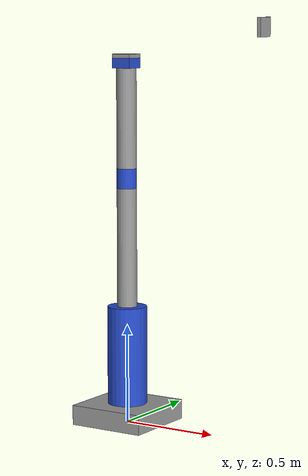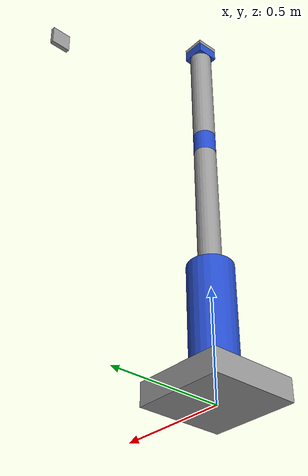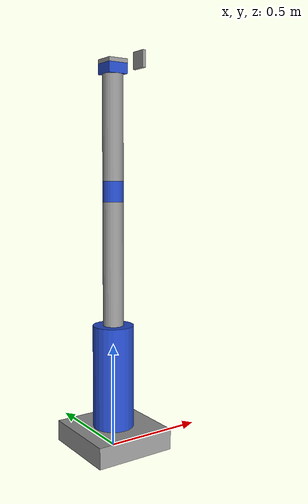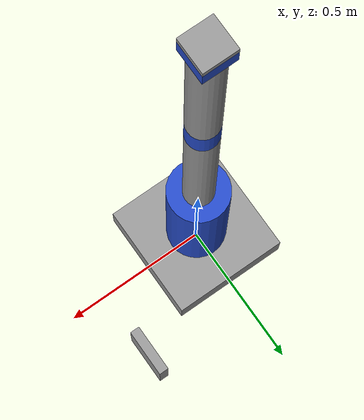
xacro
<?xml version="1.0"?>
<robot xmlns:xacro="http://www.ros.org/wiki/xacro">

    <link name="world"/>

    <joint name="world_joint" type="fixed">
        <parent link="world"/>
        <child link="base_link"/>
        <origin xyz="0 0 0" rpy="0 0 0"/>
    </joint>

    <link name="base_link">
        <visual>
            <geometry>
                <box size="0.4 0.4 0.1" />
            </geometry>
            <origin xyz="0 0 0.05" rpy="0 0 0" />
            <material name="grey" />
        </visual>

       <xacro:box_inertia m="5.0" x="0.4" y="0.4" z="0.1"
                           o_xyz="0 0 0.05" o_rpy="0 0 0" />

        <collision>
            <geometry>
                <box size="0.4 0.4 0.1" />
            </geometry>
            <origin xyz="0 0 0.05" rpy="0 0 0" />
        </collision>
    </link>

    <link name="shoulder_link">
        <visual>
            <geometry>
                <cylinder length="0.5" radius="0.1" />
            </geometry>
            <origin xyz="0 0 0.25" rpy="0 0 0" />
            <material name="blue" />
        </visual>

        <collision>
            <geometry>
                <box size="0.2 0.2 0.5"/>
            </geometry>
            <origin xyz="0 0 0.25" rpy="0 0 0" />
        </collision>

       <xacro:box_inertia m="5.0" x="0.2" y="0.2" z="0.5"
                           o_xyz="0 0 0.25" o_rpy="0 0 0" />
    </link>

    <link name="arm_link">
        <visual>
            <geometry>
                <cylinder length="0.6" radius="0.05" />
            </geometry>
            <origin xyz="0 0 0.3" rpy="0 0 0" />
            <material name="grey" />
        </visual>
        <collision>
            <geometry>
                <box size="0.1 0.1 0.6" />
            </geometry>
            <origin xyz="0 0 0.3" rpy="0 0 0" />
        </collision>

        <xacro:box_inertia m="5.0" x="0.1" y="0.1" z="0.6"
                           o_xyz="0 0 0.3" o_rpy="0 0 0" />

    </link>

    <link name="elbow_link">
        <visual>
            <geometry>
                <cylinder length="0.1" radius="0.05" />
            </geometry>
            <origin xyz="0 0 0.05" rpy="0 0 0" />
            <material name="blue" />
        </visual>
        <collision>
            <geometry>
                <box size="0.1 0.1 0.1" />
            </geometry>
            <origin xyz="0 0 0.05" rpy="0 0 0" />
        </collision>

          <xacro:box_inertia m="5.0" x="0.1" y="0.1" z="0.1"
                           o_xyz="0 0 0.05" o_rpy="0 0 0" />

    </link>

    <link name="forearm_link">
        <visual>
            <geometry>
                <cylinder length="0.5" radius="0.05" />
            </geometry>
            <origin xyz="0 0 0.25" rpy="0 0 0" />
            <material name="grey" />
        </visual>
        <collision>
            <geometry>
                <box size="0.1 0.1 0.5" />
            </geometry>
            <origin xyz="0 0 0.25" rpy="0 0 0" />
        </collision>

        <xacro:box_inertia m="5.0" x="0.1" y="0.1" z="0.5"
                           o_xyz="0 0 0.25" o_rpy="0 0 0" />

    </link>

    <link name="wrist_link">
        <visual>
            <geometry>
                <box size="0.1 0.1 0.05" />
            </geometry>
            <origin xyz="0 0 0.025" rpy="0 0 0" />
            <material name="blue" />
        </visual>
        <collision>
            <geometry>
                <box size="0.1 0.1 0.05" />
            </geometry>
            <origin xyz="0 0 0.025" rpy="0 0 0" />
        </collision>

          <xacro:box_inertia m="5.0" x="0.1" y="0.1" z="0.05"
                           o_xyz="0 0 0.05" o_rpy="0 0 0" />
    </link>

    <link name="hand_link">
        <visual>
            <geometry>
                <box size="0.1 0.1 0.02" />
            </geometry>
            <origin xyz="0 0 0.01" rpy="0 0 0" />
            <material name="grey" />
        </visual>
        <collision>
            <geometry>
                <box size="0.1 0.1 0.02" />
            </geometry>
            <origin xyz="0 0 0.01" rpy="0 0 0" />
        </collision>

        <xacro:box_inertia m="5.0" x="0.1" y="0.1" z="0.02"
                           o_xyz="0 0 0.01" o_rpy="0 0 0" />
    </link>

    <link name="camera_link">
        <visual>
            <geometry>
                <box size="0.1 0.1 0.02"/>
            </geometry>
            <origin xyz="0 0 0" rpy="0 0 0" />
            <material name="grey"/>
        </visual>

        <collision>
            <geometry>
                <box size="0.1 0.1 0.02"/>
            </geometry>
             <origin xyz="0 0 0" rpy="0 0 0"/>
        </collision>
        <xacro:box_inertia m="0.1" x="0.1" y="0.1" z="0.02"
                           o_xyz="0 0 0" o_rpy="0 0 0" />
    </link>
    <link name="tool_link" >
        <inertial>
            <mass value="0.01"/>
            <inertia ixx="0.000001" ixy="0.0" ixz="0.0" iyy="0.000001" iyz="0.0" izz="0.000001"/>
        </inertial>
    </link>

    <joint name="joint1" type="revolute">
        <parent link="base_link" />
        <child link="shoulder_link" />
        <origin xyz="0 0 0.1" rpy="0 0 0" />
        <axis xyz="0 0 1" />
        <limit effort="1000.0" velocity="1.0" lower="-3.14" upper="3.14" />
    </joint>

    <joint name="joint2" type="revolute">
        <parent link="shoulder_link" />
        <child link="arm_link" />
        <origin xyz="0 0 0.5" rpy="0 0 0" />
        <axis xyz="0 1 0" />
        <limit effort="1000.0" velocity="1.0" lower="0" upper="2.5" />
    </joint>

    <joint name="joint3" type="revolute">
        <parent link="arm_link" />
        <child link="elbow_link" />
        <origin xyz="0 0 0.6" rpy="0 0 0" />
        <axis xyz="0 1 0" />
        <limit effort="1000.0" velocity="1.0" lower="0" upper="2.5" />
    </joint>

    <joint name="joint4" type="revolute">
        <parent link="elbow_link" />
        <child link="forearm_link" />
        <origin xyz="0 0 0.1" rpy="0 0 0" />
        <axis xyz="0 0 1" />
        <limit effort="1000.0" velocity="1.0" lower="-3.14" upper="3.14" />
    </joint>

    <joint name="joint5" type="revolute">
        <parent link="forearm_link" />
        <child link="wrist_link" />
        <origin xyz="0 0 0.5" rpy="0 0 0" />
        <axis xyz="0 1 0" />
        <limit effort="1000.0" velocity="1.0" lower="-1.57" upper="1.57" />
    </joint>

    <joint name="joint6" type="continuous">
        <parent link="wrist_link" />
        <child link="hand_link" />
        <origin xyz="0 0 0.05" rpy="0 0 0" />
        <axis xyz="0 0 1" />
        <limit effort="100" velocity="1" />
    </joint>

    <joint name="hand_tool_joint" type="fixed">
        <parent link="hand_link" />
        <child link="tool_link" />
        <origin xyz="0 0 0.02" rpy="0 0 0" />
    </joint>

    <joint name="world_to_camera_joint" type="fixed">
        <parent link="world"/>
        <child link="camera_link"/>
        <origin xyz="0.5 0.5 2.0" rpy="0 1.57 0"/>
    </joint>

    <joint name="camera_optical_joint" type="fixed">
        <parent link="camera_link"/>
        <child link="camera_link_optical"/>
        <origin xyz="0 0 0" rpy="0 1.57 0"/>
    </joint>
    <link name="camera_link_optical">
        <inertial>
            <mass value="0.001"/>
            <inertia ixx="0.0000001" ixy="0.0" ixz="0.0" iyy="0.0000001" iyz="0.0" izz="0.0000001"/>
        </inertial>
    </link>

    <gazebo reference="camera_link">
            <sensor name="camera" type="camera">
                <camera>
                    <horizontal_fov>1.047</horizontal_fov>
                    <image>
                        <width>640</width>
                        <height>480</height>
                        <format>R8G8B8</format>
                    </image>
                    <clip>
                        <near>0.1</near>
                        <far>20</far>
                    </clip>
                <optical_frame_id>camera_link_optical</optical_frame_id>
                <camera_info_topic>camera/camera_info</camera_info_topic>
            </camera>
            <always_on>1</always_on>
            <update_rate>20</update_rate>
            <visualize>true</visualize>
            <topic>camera/image_raw</topic>
        </sensor>
    </gazebo>

</robot>
